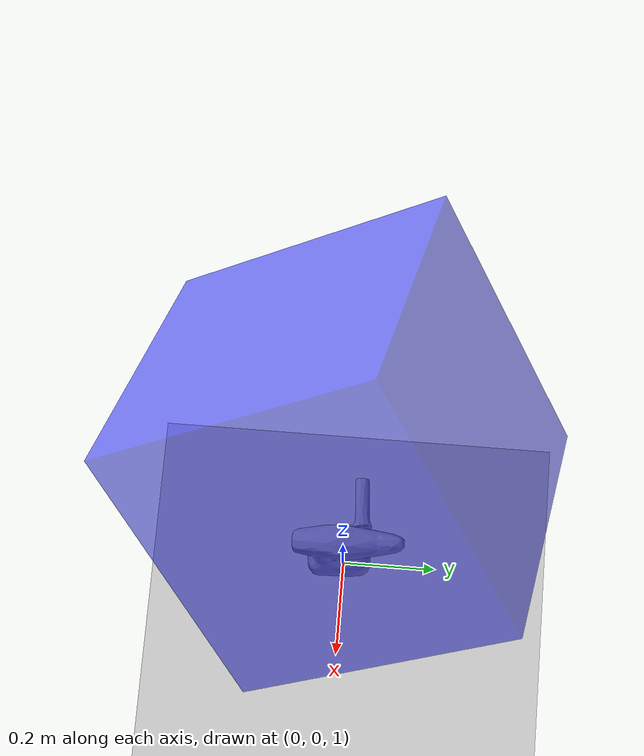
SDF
<?xml version="1.0" ?>
<sdf version="1.5">
  <world name="default">
    <include>
      <uri>model://ground_plane</uri>
    </include>
    <include>
      <uri>model://sun</uri>
    </include>
    <include>
      <uri>model://cordless_drill</uri>
      <static>true</static>
      <pose>0 0 1 0 0 0</pose>
    </include>

    <plugin name="containDrill" filename="libContainPlugin.so">
      <entity>drill</entity>
      <namespace>gazebo/default/drill</namespace>
      <pose frame="box::link">0 0 0 0 0 0</pose>
      <geometry>
        <box>
          <size>0.5 0.5 0.5</size>
        </box>
      </geometry>
    </plugin>

    <model name="box">
      <static>false</static>
      <pose>0 0 2 0.707 0.707 0.707</pose>
      <link name="link">
        <!-- Box visual for demonstration -->
        <visual name="visual">
          <geometry>
            <box>
              <size>0.5 0.5 0.5</size>
            </box>
          </geometry>
          <material>
            <ambient>0 0 1 0.5</ambient>
            <specular>0 0 1 0.5</specular>
            <diffuse>0 0 1 0.5</diffuse>
            <emissive>0 0 1 0.5</emissive>
          </material>
        </visual>
      </link>
    </model>
  </world>
</sdf>

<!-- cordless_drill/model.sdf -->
<sdf version="1.5">
  <model name="drill">
    <link name="link">
      <inertial>
        <pose>-0.00637 -0.008 0.13254 0 0 0</pose>
        <inertia>
          <ixx>0.01331127</ixx>
          <ixy>-0.00030365</ixy>
          <ixz>-0.00034148</ixz>
          <iyy>0.01157659</iyy>
          <iyz>0.00088073</iyz>
          <izz>0.00378028</izz>
        </inertia>
        <mass>1.50251902</mass>
      </inertial>
      <collision name="collision">
        <pose>0 0 -0.09 0 0 0</pose>
        <geometry>
          <mesh>
            <uri>model://../model_source/models/cordless_drill/meshes/cordless_drill.stl</uri>
          </mesh>
        </geometry>
        <surface>
          <contact>
            <ode>
              <max_vel>0.1</max_vel>
              <min_depth>0.001</min_depth>
            </ode>
          </contact>
        </surface>
      </collision>
      <visual name="visual">
        <pose>0 0 -0.09 0 0 0</pose>
        <geometry>
          <mesh>
            <uri>model://../model_source/models/cordless_drill/meshes/cordless_drill.dae</uri>
          </mesh>
        </geometry>
      </visual>
    </link>
  </model>
</sdf>
